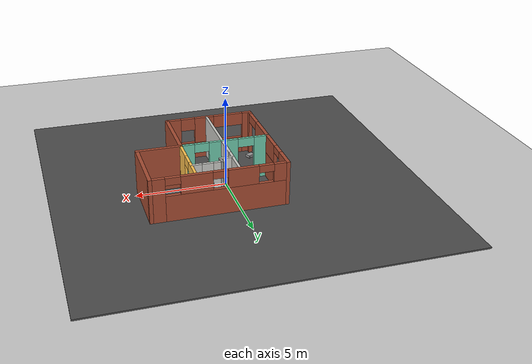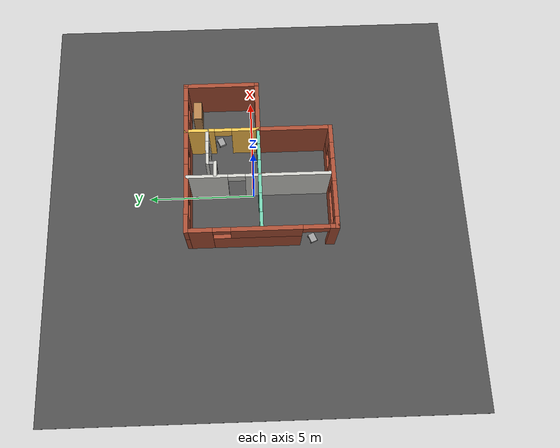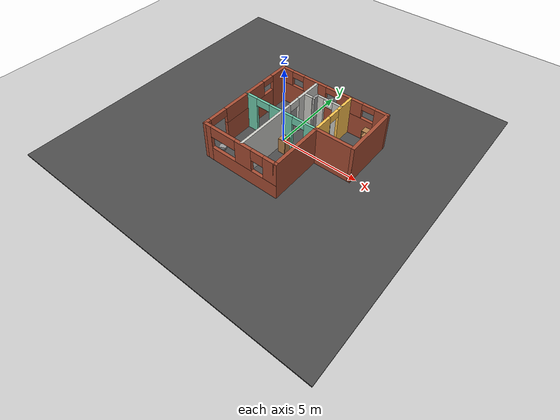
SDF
<sdf version="1.7">
 <world name="default">
  <plugin name="hello" filename="libhello.so"/>
  <light name="sun" type="directional">
   <pose>0 0 10 0 -0 0</pose>
   <diffuse>0.8 0.8 0.8 1</diffuse>
   <specular>0.2 0.2 0.2 1</specular>
   <attenuation>
    <range>1000</range>
    <constant>0.9</constant>
    <linear>0.01</linear>
    <quadratic>0.001</quadratic>
   </attenuation>
   <direction>-0.5 0.1 -0.9</direction>
   <spot><inner_angle>0</inner_angle><outer_angle>0</outer_angle><falloff>0</falloff></spot>
  </light>
  <model name="ground_plane">
   <static>1</static>
   <link name="link">
    <collision name="collision">
     <geometry><plane><normal>0 0 1</normal><size>100 100</size></plane></geometry>
     <surface><friction><ode><mu>100</mu><mu2>50</mu2></ode></friction></surface>
    </collision>
    <visual name="visual">
     <cast_shadows>0</cast_shadows>
     <geometry><plane><normal>0 0 1</normal><size>100 100</size></plane></geometry>
     <material>
      <script><uri>file://media/materials/scripts/gazebo.material</uri><name>Gazebo/Grey</name></script>
     </material>
    </visual>
   </link>
  </model>
  <gravity>0 0 -9.8</gravity>
  <magnetic_field>6e-06 2.3e-05 -4.2e-05</magnetic_field>
  <atmosphere type="adiabatic"/>
  <physics type="ode">
   <max_step_size>0.001</max_step_size>
   <real_time_factor>1</real_time_factor>
   <real_time_update_rate>1000</real_time_update_rate>
  </physics>
  <scene><ambient>0.4 0.4 0.4 1</ambient><background>0.7 0.7 0.7 1</background><shadows>1</shadows></scene>
  <spherical_coordinates>
   <surface_model>EARTH_WGS84</surface_model>
   <latitude_deg>0</latitude_deg>
   <longitude_deg>0</longitude_deg>
   <elevation>0</elevation>
   <heading_deg>0</heading_deg>
  </spherical_coordinates>
  <model name="Building">
   <pose>2.54634 -0.291397 0 0 -0 0</pose>
   <link name="Wall_14">
    <pose>-4.9865 -0 0 0 -0 -1.5708</pose>
    <visual name="Wall_14_Visual_0">
     <pose>-2.81496 0 1.25 0 -0 0</pose>
     <geometry><box><size>1.27056 0.2 2.5</size></box></geometry>
     <material>
      <script><uri>file://media/materials/scripts/gazebo.material</uri><name>Gazebo/Bricks</name></script>
      <ambient>1 1 1 1</ambient>
     </material>
     <meta><layer>0</layer></meta>
    </visual>
    <collision name="Wall_14_Collision_0">
     <geometry><box><size>1.27056 0.2 2.5</size></box></geometry>
     <pose>-2.81496 0 1.25 0 -0 0</pose>
    </collision>
    <visual name="Wall_14_Visual_1">
     <pose>3.23578 0 1.25 0 -0 0</pose>
     <geometry><box><size>0.428921 0.2 2.5</size></box></geometry>
     <material>
      <script><uri>file://media/materials/scripts/gazebo.material</uri><name>Gazebo/Bricks</name></script>
      <ambient>1 1 1 1</ambient>
     </material>
     <meta><layer>0</layer></meta>
    </visual>
    <collision name="Wall_14_Collision_1">
     <geometry><box><size>0.428921 0.2 2.5</size></box></geometry>
     <pose>3.23578 0 1.25 0 -0 0</pose>
    </collision>
    <visual name="Wall_14_Visual_2">
     <pose>-0.179181 0 0.75 0 -0 0</pose>
     <geometry><box><size>4.00101 0.2 1.5</size></box></geometry>
     <material>
      <script><uri>file://media/materials/scripts/gazebo.material</uri><name>Gazebo/Bricks</name></script>
      <ambient>1 1 1 1</ambient>
     </material>
     <meta><layer>0</layer></meta>
    </visual>
    <collision name="Wall_14_Collision_2">
     <geometry><box><size>4.00101 0.2 1.5</size></box></geometry>
     <pose>-0.179181 0 0.75 0 -0 0</pose>
    </collision>
    <visual name="Wall_14_Visual_3">
     <pose>0.220819 0 2 0 -0 0</pose>
     <geometry><box><size>3.201 0.2 1</size></box></geometry>
     <material>
      <script><uri>file://media/materials/scripts/gazebo.material</uri><name>Gazebo/Bricks</name></script>
      <ambient>1 1 1 1</ambient>
     </material>
     <meta><layer>0</layer></meta>
    </visual>
    <collision name="Wall_14_Collision_3">
     <geometry><box><size>3.201 0.2 1</size></box></geometry>
     <pose>0.220819 0 2 0 -0 0</pose>
    </collision>
    <visual name="Wall_14_Visual_4">
     <pose>2.42132 0 2.25 0 -0 0</pose>
     <geometry><box><size>1.2 0.2 0.5</size></box></geometry>
     <material>
      <script><uri>file://media/materials/scripts/gazebo.material</uri><name>Gazebo/Bricks</name></script>
      <ambient>1 1 1 1</ambient>
     </material>
     <meta><layer>0</layer></meta>
    </visual>
    <collision name="Wall_14_Collision_4">
     <geometry><box><size>1.2 0.2 0.5</size></box></geometry>
     <pose>2.42132 0 2.25 0 -0 0</pose>
    </collision>
    <visual name="Wall_14_Visual_5">
     <pose>-1.77968 0 2.3 0 -0 0</pose>
     <geometry><box><size>0.8 0.2 0.4</size></box></geometry>
     <material>
      <script><uri>file://media/materials/scripts/gazebo.material</uri><name>Gazebo/Bricks</name></script>
      <ambient>1 1 1 1</ambient>
     </material>
     <meta><layer>0</layer></meta>
    </visual>
    <collision name="Wall_14_Collision_5">
     <geometry><box><size>0.8 0.2 0.4</size></box></geometry>
     <pose>-1.77968 0 2.3 0 -0 0</pose>
    </collision>
   </link>
   <link name="Wall_15">
    <pose>-2.5615 -3.35 0 0 -0 0</pose>
    <visual name="Wall_15_Visual_0">
     <pose>-2.24849 0 1.25 0 -0 0</pose>
     <geometry><box><size>0.553027 0.2 2.5</size></box></geometry>
     <material>
      <script><uri>file://media/materials/scripts/gazebo.material</uri><name>Gazebo/Bricks</name></script>
      <ambient>1 1 1 1</ambient>
     </material>
     <meta><layer>0</layer></meta>
    </visual>
    <collision name="Wall_15_Collision_0">
     <geometry><box><size>0.553027 0.2 2.5</size></box></geometry>
     <pose>-2.24849 0 1.25 0 -0 0</pose>
    </collision>
    <visual name="Wall_15_Visual_1">
     <pose>0.276513 0 0.5 0 -0 0</pose>
     <geometry><box><size>4.49697 0.2 1</size></box></geometry>
     <material>
      <script><uri>file://media/materials/scripts/gazebo.material</uri><name>Gazebo/Bricks</name></script>
      <ambient>1 1 1 1</ambient>
     </material>
     <meta><layer>0</layer></meta>
    </visual>
    <collision name="Wall_15_Collision_1">
     <geometry><box><size>4.49697 0.2 1</size></box></geometry>
     <pose>0.276513 0 0.5 0 -0 0</pose>
    </collision>
    <visual name="Wall_15_Visual_2">
     <pose>0.283027 0 1.75 0 -0 0</pose>
     <geometry><box><size>1.11 0.2 1.5</size></box></geometry>
     <material>
      <script><uri>file://media/materials/scripts/gazebo.material</uri><name>Gazebo/Bricks</name></script>
      <ambient>1 1 1 1</ambient>
     </material>
     <meta><layer>0</layer></meta>
    </visual>
    <collision name="Wall_15_Collision_2">
     <geometry><box><size>1.11 0.2 1.5</size></box></geometry>
     <pose>0.283027 0 1.75 0 -0 0</pose>
    </collision>
    <visual name="Wall_15_Visual_3">
     <pose>2.08151 0 1.75 0 -0 0</pose>
     <geometry><box><size>0.886973 0.2 1.5</size></box></geometry>
     <material>
      <script><uri>file://media/materials/scripts/gazebo.material</uri><name>Gazebo/Bricks</name></script>
      <ambient>1 1 1 1</ambient>
     </material>
     <meta><layer>0</layer></meta>
    </visual>
    <collision name="Wall_15_Collision_3">
     <geometry><box><size>0.886973 0.2 1.5</size></box></geometry>
     <pose>2.08151 0 1.75 0 -0 0</pose>
    </collision>
    <visual name="Wall_15_Visual_4">
     <pose>-1.12197 0 2.15 0 -0 0</pose>
     <geometry><box><size>1.7 0.2 0.7</size></box></geometry>
     <material>
      <script><uri>file://media/materials/scripts/gazebo.material</uri><name>Gazebo/Bricks</name></script>
      <ambient>1 1 1 1</ambient>
     </material>
     <meta><layer>0</layer></meta>
    </visual>
    <collision name="Wall_15_Collision_4">
     <geometry><box><size>1.7 0.2 0.7</size></box></geometry>
     <pose>-1.12197 0 2.15 0 -0 0</pose>
    </collision>
    <visual name="Wall_15_Visual_5">
     <pose>1.23803 0 2.15 0 -0 0</pose>
     <geometry><box><size>0.8 0.2 0.7</size></box></geometry>
     <material>
      <script><uri>file://media/materials/scripts/gazebo.material</uri><name>Gazebo/Bricks</name></script>
      <ambient>1 1 1 1</ambient>
     </material>
     <meta><layer>0</layer></meta>
    </visual>
    <collision name="Wall_15_Collision_5">
     <geometry><box><size>0.8 0.2 0.7</size></box></geometry>
     <pose>1.23803 0 2.15 0 -0 0</pose>
    </collision>
   </link>
   <link name="Wall_16">
    <collision name="Wall_16_Collision">
     <geometry><box><size>3.55 0.2 2.5</size></box></geometry>
     <pose>0 0 1.25 0 -0 0</pose>
    </collision>
    <visual name="Wall_16_Visual">
     <pose>0 0 1.25 0 -0 0</pose>
     <geometry><box><size>3.55 0.2 2.5</size></box></geometry>
     <material>
      <script><uri>file://media/materials/scripts/gazebo.material</uri><name>Gazebo/Bricks</name></script>
      <ambient>1 1 1 1</ambient>
     </material>
     <meta><layer>0</layer></meta>
    </visual>
    <pose>-0.1365 -1.675 0 0 -0 1.5708</pose>
   </link>
   <link name="Wall_17">
    <collision name="Wall_17_Collision">
     <geometry><box><size>2.55 0.2 2.5</size></box></geometry>
     <pose>0 0 1.25 0 -0 0</pose>
    </collision>
    <visual name="Wall_17_Visual">
     <pose>0 0 1.25 0 -0 0</pose>
     <geometry><box><size>2.55 0.2 2.5</size></box></geometry>
     <material>
      <script><uri>file://media/materials/scripts/gazebo.material</uri><name>Gazebo/Bricks</name></script>
      <ambient>1 1 1 1</ambient>
     </material>
     <meta><layer>0</layer></meta>
    </visual>
    <pose>1.0385 -0 0 0 -0 0</pose>
   </link>
   <link name="Wall_18">
    <collision name="Wall_18_Collision">
     <geometry><box><size>3.55 0.2 2.5</size></box></geometry>
     <pose>0 0 1.25 0 -0 0</pose>
    </collision>
    <visual name="Wall_18_Visual">
     <pose>0 0 1.25 0 -0 0</pose>
     <geometry><box><size>3.55 0.2 2.5</size></box></geometry>
     <material>
      <script><uri>file://media/materials/scripts/gazebo.material</uri><name>Gazebo/Bricks</name></script>
      <ambient>1 1 1 1</ambient>
     </material>
     <meta><layer>0</layer></meta>
    </visual>
    <pose>2.2135 1.675 0 0 -0 1.5708</pose>
   </link>
   <link name="Wall_19">
    <pose>-1.3865 3.35 0 0 -0 3.14159</pose>
    <visual name="Wall_19_Visual_0">
     <pose>-3.27151 0 1.25 0 -0 0</pose>
     <geometry><box><size>0.856973 0.2 2.5</size></box></geometry>
     <material>
      <script><uri>file://media/materials/scripts/gazebo.material</uri><name>Gazebo/Bricks</name></script>
      <ambient>1 1 1 1</ambient>
     </material>
     <meta><layer>0</layer></meta>
    </visual>
    <collision name="Wall_19_Collision_0">
     <geometry><box><size>0.856973 0.2 2.5</size></box></geometry>
     <pose>-3.27151 0 1.25 0 -0 0</pose>
    </collision>
    <visual name="Wall_19_Visual_1">
     <pose>0.428486 0 0.75 0 -0 0</pose>
     <geometry><box><size>6.54303 0.2 1.5</size></box></geometry>
     <material>
      <script><uri>file://media/materials/scripts/gazebo.material</uri><name>Gazebo/Bricks</name></script>
      <ambient>1 1 1 1</ambient>
     </material>
     <meta><layer>0</layer></meta>
    </visual>
    <collision name="Wall_19_Collision_1">
     <geometry><box><size>6.54303 0.2 1.5</size></box></geometry>
     <pose>0.428486 0 0.75 0 -0 0</pose>
    </collision>
    <visual name="Wall_19_Visual_2">
     <pose>-1.21303 0 2 0 -0 0</pose>
     <geometry><box><size>1.66 0.2 1</size></box></geometry>
     <material>
      <script><uri>file://media/materials/scripts/gazebo.material</uri><name>Gazebo/Bricks</name></script>
      <ambient>1 1 1 1</ambient>
     </material>
     <meta><layer>0</layer></meta>
    </visual>
    <collision name="Wall_19_Collision_2">
     <geometry><box><size>1.66 0.2 1</size></box></geometry>
     <pose>-1.21303 0 2 0 -0 0</pose>
    </collision>
    <visual name="Wall_19_Visual_3">
     <pose>1.22697 0 2 0 -0 0</pose>
     <geometry><box><size>1.62 0.2 1</size></box></geometry>
     <material>
      <script><uri>file://media/materials/scripts/gazebo.material</uri><name>Gazebo/Bricks</name></script>
      <ambient>1 1 1 1</ambient>
     </material>
     <meta><layer>0</layer></meta>
    </visual>
    <collision name="Wall_19_Collision_3">
     <geometry><box><size>1.62 0.2 1</size></box></geometry>
     <pose>1.22697 0 2 0 -0 0</pose>
    </collision>
    <visual name="Wall_19_Visual_4">
     <pose>3.26849 0 2 0 -0 0</pose>
     <geometry><box><size>0.863027 0.2 1</size></box></geometry>
     <material>
      <script><uri>file://media/materials/scripts/gazebo.material</uri><name>Gazebo/Bricks</name></script>
      <ambient>1 1 1 1</ambient>
     </material>
     <meta><layer>0</layer></meta>
    </visual>
    <collision name="Wall_19_Collision_4">
     <geometry><box><size>0.863027 0.2 1</size></box></geometry>
     <pose>3.26849 0 2 0 -0 0</pose>
    </collision>
    <visual name="Wall_19_Visual_5">
     <pose>-2.44303 0 2.3 0 -0 0</pose>
     <geometry><box><size>0.8 0.2 0.4</size></box></geometry>
     <material>
      <script><uri>file://media/materials/scripts/gazebo.material</uri><name>Gazebo/Bricks</name></script>
      <ambient>1 1 1 1</ambient>
     </material>
     <meta><layer>0</layer></meta>
    </visual>
    <collision name="Wall_19_Collision_5">
     <geometry><box><size>0.8 0.2 0.4</size></box></geometry>
     <pose>-2.44303 0 2.3 0 -0 0</pose>
    </collision>
    <visual name="Wall_19_Visual_6">
     <pose>0.016973 0 2.3 0 -0 0</pose>
     <geometry><box><size>0.8 0.2 0.4</size></box></geometry>
     <material>
      <script><uri>file://media/materials/scripts/gazebo.material</uri><name>Gazebo/Bricks</name></script>
      <ambient>1 1 1 1</ambient>
     </material>
     <meta><layer>0</layer></meta>
    </visual>
    <collision name="Wall_19_Collision_6">
     <geometry><box><size>0.8 0.2 0.4</size></box></geometry>
     <pose>0.016973 0 2.3 0 -0 0</pose>
    </collision>
    <visual name="Wall_19_Visual_7">
     <pose>2.43697 0 2.3 0 -0 0</pose>
     <geometry><box><size>0.8 0.2 0.4</size></box></geometry>
     <material>
      <script><uri>file://media/materials/scripts/gazebo.material</uri><name>Gazebo/Bricks</name></script>
      <ambient>1 1 1 1</ambient>
     </material>
     <meta><layer>0</layer></meta>
    </visual>
    <collision name="Wall_19_Collision_7">
     <geometry><box><size>0.8 0.2 0.4</size></box></geometry>
     <pose>2.43697 0 2.3 0 -0 0</pose>
    </collision>
   </link>
   <link name="Wall_21">
    <pose>-2.5615 -0 0 0 -0 3.14159</pose>
    <visual name="Wall_21_Visual_0">
     <pose>-2.0857 0 1.25 0 -0 0</pose>
     <geometry><box><size>0.8286 0.15 2.5</size></box></geometry>
     <material>
      <script><uri>file://media/materials/scripts/gazebo.material</uri><name>Gazebo/Grey</name></script>
      <ambient>0.435294 0.796078 0.67451 1</ambient>
     </material>
     <meta><layer>0</layer></meta>
    </visual>
    <collision name="Wall_21_Collision_0">
     <geometry><box><size>0.8286 0.15 2.5</size></box></geometry>
     <pose>-2.0857 0 1.25 0 -0 0</pose>
    </collision>
    <visual name="Wall_21_Visual_1">
     <pose>-0.058737 0 1.25 0 -0 0</pose>
     <geometry><box><size>1.62533 0.15 2.5</size></box></geometry>
     <material>
      <script><uri>file://media/materials/scripts/gazebo.material</uri><name>Gazebo/Grey</name></script>
      <ambient>0.435294 0.796078 0.67451 1</ambient>
     </material>
     <meta><layer>0</layer></meta>
    </visual>
    <collision name="Wall_21_Collision_1">
     <geometry><box><size>1.62533 0.15 2.5</size></box></geometry>
     <pose>-0.058737 0 1.25 0 -0 0</pose>
    </collision>
    <visual name="Wall_21_Visual_2">
     <pose>2.07696 0 1.25 0 -0 0</pose>
     <geometry><box><size>0.846073 0.15 2.5</size></box></geometry>
     <material>
      <script><uri>file://media/materials/scripts/gazebo.material</uri><name>Gazebo/Grey</name></script>
      <ambient>0.435294 0.796078 0.67451 1</ambient>
     </material>
     <meta><layer>0</layer></meta>
    </visual>
    <collision name="Wall_21_Collision_2">
     <geometry><box><size>0.846073 0.15 2.5</size></box></geometry>
     <pose>2.07696 0 1.25 0 -0 0</pose>
    </collision>
    <visual name="Wall_21_Visual_3">
     <pose>-1.2714 0 2.25 0 -0 0</pose>
     <geometry><box><size>0.8 0.15 0.5</size></box></geometry>
     <material>
      <script><uri>file://media/materials/scripts/gazebo.material</uri><name>Gazebo/Grey</name></script>
      <ambient>0.435294 0.796078 0.67451 1</ambient>
     </material>
     <meta><layer>0</layer></meta>
    </visual>
    <collision name="Wall_21_Collision_3">
     <geometry><box><size>0.8 0.15 0.5</size></box></geometry>
     <pose>-1.2714 0 2.25 0 -0 0</pose>
    </collision>
    <visual name="Wall_21_Visual_4">
     <pose>1.20393 0 2.25 0 -0 0</pose>
     <geometry><box><size>0.9 0.15 0.5</size></box></geometry>
     <material>
      <script><uri>file://media/materials/scripts/gazebo.material</uri><name>Gazebo/Grey</name></script>
      <ambient>0.435294 0.796078 0.67451 1</ambient>
     </material>
     <meta><layer>0</layer></meta>
    </visual>
    <collision name="Wall_21_Collision_4">
     <geometry><box><size>0.9 0.15 0.5</size></box></geometry>
     <pose>1.20393 0 2.25 0 -0 0</pose>
    </collision>
   </link>
   <link name="Wall_23">
    <pose>-2.43461 0.010248 0 0 -0 -1.5708</pose>
    <visual name="Wall_23_Visual_0">
     <pose>-2.41085 0 1.25 0 -0 0</pose>
     <geometry><box><size>1.92831 0.15 2.5</size></box></geometry>
     <material>
      <script><uri>file://media/materials/scripts/gazebo.material</uri><name>Gazebo/CeilingTiled</name></script>
      <ambient>0.435294 0.796078 0.67451 1</ambient>
     </material>
     <meta><layer>0</layer></meta>
    </visual>
    <collision name="Wall_23_Collision_0">
     <geometry><box><size>1.92831 0.15 2.5</size></box></geometry>
     <pose>-2.41085 0 1.25 0 -0 0</pose>
    </collision>
    <visual name="Wall_23_Visual_1">
     <pose>1.36415 0 1.25 0 -0 0</pose>
     <geometry><box><size>4.02169 0.15 2.5</size></box></geometry>
     <material>
      <script><uri>file://media/materials/scripts/gazebo.material</uri><name>Gazebo/CeilingTiled</name></script>
      <ambient>0.435294 0.796078 0.67451 1</ambient>
     </material>
     <meta><layer>0</layer></meta>
    </visual>
    <collision name="Wall_23_Collision_1">
     <geometry><box><size>4.02169 0.15 2.5</size></box></geometry>
     <pose>1.36415 0 1.25 0 -0 0</pose>
    </collision>
    <visual name="Wall_23_Visual_2">
     <pose>-1.04669 0 2.25 0 -0 0</pose>
     <geometry><box><size>0.8 0.15 0.5</size></box></geometry>
     <material>
      <script><uri>file://media/materials/scripts/gazebo.material</uri><name>Gazebo/CeilingTiled</name></script>
      <ambient>0.435294 0.796078 0.67451 1</ambient>
     </material>
     <meta><layer>0</layer></meta>
    </visual>
    <collision name="Wall_23_Collision_2">
     <geometry><box><size>0.8 0.15 0.5</size></box></geometry>
     <pose>-1.04669 0 2.25 0 -0 0</pose>
    </collision>
   </link>
   <link name="Wall_25">
    <pose>-0.1365 1.675 0 0 -0 1.5708</pose>
    <visual name="Wall_25_Visual_0">
     <pose>-1.09827 0 1.25 0 -0 0</pose>
     <geometry><box><size>1.30347 0.15 2.5</size></box></geometry>
     <material>
      <script><uri>file://media/materials/scripts/gazebo.material</uri><name>Gazebo/Grey</name></script>
      <ambient>1 0.764706 0.305882 1</ambient>
     </material>
     <meta><layer>0</layer></meta>
    </visual>
    <collision name="Wall_25_Collision_0">
     <geometry><box><size>1.30347 0.15 2.5</size></box></geometry>
     <pose>-1.09827 0 1.25 0 -0 0</pose>
    </collision>
    <visual name="Wall_25_Visual_1">
     <pose>1.05173 0 1.25 0 -0 0</pose>
     <geometry><box><size>1.39654 0.15 2.5</size></box></geometry>
     <material>
      <script><uri>file://media/materials/scripts/gazebo.material</uri><name>Gazebo/Grey</name></script>
      <ambient>1 0.764706 0.305882 1</ambient>
     </material>
     <meta><layer>0</layer></meta>
    </visual>
    <collision name="Wall_25_Collision_1">
     <geometry><box><size>1.39654 0.15 2.5</size></box></geometry>
     <pose>1.05173 0 1.25 0 -0 0</pose>
    </collision>
    <visual name="Wall_25_Visual_2">
     <pose>-0.046535 0 2.25 0 -0 0</pose>
     <geometry><box><size>0.8 0.15 0.5</size></box></geometry>
     <material>
      <script><uri>file://media/materials/scripts/gazebo.material</uri><name>Gazebo/Grey</name></script>
      <ambient>1 0.764706 0.305882 1</ambient>
     </material>
     <meta><layer>0</layer></meta>
    </visual>
    <collision name="Wall_25_Collision_2">
     <geometry><box><size>0.8 0.15 0.5</size></box></geometry>
     <pose>-0.046535 0 2.25 0 -0 0</pose>
    </collision>
   </link>
   <link name="Wall_30">
    <collision name="Wall_30_Collision">
     <geometry><box><size>0.76067 0.15 2.5</size></box></geometry>
     <pose>0 0 1.25 0 -0 0</pose>
    </collision>
    <visual name="Wall_30_Visual">
     <pose>0 0 1.25 0 -0 0</pose>
     <geometry><box><size>0.76067 0.15 2.5</size></box></geometry>
     <material>
      <script><uri>file://media/materials/scripts/gazebo.material</uri><name>Gazebo/CeilingTiled</name></script>
      <ambient>1 1 1 1</ambient>
     </material>
     <meta><layer>0</layer></meta>
    </visual>
    <pose>-2.06879 2.0248 0 0 -0 0</pose>
   </link>
   <link name="Wall_31">
    <collision name="Wall_31_Collision">
     <geometry><box><size>0.5 0.15 2.5</size></box></geometry>
     <pose>0 0 1.25 0 -0 0</pose>
    </collision>
    <visual name="Wall_31_Visual">
     <pose>0 0 1.25 0 -0 0</pose>
     <geometry><box><size>0.5 0.15 2.5</size></box></geometry>
     <material>
      <script><uri>file://media/materials/scripts/gazebo.material</uri><name>Gazebo/Grey</name></script>
      <ambient>1 1 1 1</ambient>
     </material>
     <meta><layer>0</layer></meta>
    </visual>
    <pose>-1.76345 2.1998 0 0 -0 1.5708</pose>
   </link>
   <link name="Wall_32">
    <pose>-0.968788 2.3748 0 0 -0 0</pose>
    <visual name="Wall_32_Visual_0">
     <pose>-0.596832 0 1.25 0 -0 0</pose>
     <geometry><box><size>0.545665 0.15 2.5</size></box></geometry>
     <material>
      <script><uri>file://media/materials/scripts/gazebo.material</uri><name>Gazebo/CeilingTiled</name></script>
      <ambient>1 1 1 1</ambient>
     </material>
     <meta><layer>0</layer></meta>
    </visual>
    <collision name="Wall_32_Collision_0">
     <geometry><box><size>0.545665 0.15 2.5</size></box></geometry>
     <pose>-0.596832 0 1.25 0 -0 0</pose>
    </collision>
    <visual name="Wall_32_Visual_1">
     <pose>0.572833 0 1.25 0 -0 0</pose>
     <geometry><box><size>0.593665 0.15 2.5</size></box></geometry>
     <material>
      <script><uri>file://media/materials/scripts/gazebo.material</uri><name>Gazebo/CeilingTiled</name></script>
      <ambient>1 1 1 1</ambient>
     </material>
     <meta><layer>0</layer></meta>
    </visual>
    <collision name="Wall_32_Collision_1">
     <geometry><box><size>0.593665 0.15 2.5</size></box></geometry>
     <pose>0.572833 0 1.25 0 -0 0</pose>
    </collision>
    <visual name="Wall_32_Visual_2">
     <pose>-0.024 0 2.25 0 -0 0</pose>
     <geometry><box><size>0.6 0.15 0.5</size></box></geometry>
     <material>
      <script><uri>file://media/materials/scripts/gazebo.material</uri><name>Gazebo/CeilingTiled</name></script>
      <ambient>1 1 1 1</ambient>
     </material>
     <meta><layer>0</layer></meta>
    </visual>
    <collision name="Wall_32_Collision_2">
     <geometry><box><size>0.6 0.15 0.5</size></box></geometry>
     <pose>-0.024 0 2.25 0 -0 0</pose>
    </collision>
   </link>
   <static>1</static>
  </model>
  <model name="Robot">
   <link name="link_1">
    <inertial>
     <mass>1</mass>
     <inertia>
      <ixx>0.166667</ixx>
      <ixy>0</ixy>
      <ixz>0</ixz>
      <iyy>0.166667</iyy>
      <iyz>0</iyz>
      <izz>0.166667</izz>
     </inertia>
    </inertial>
    <pose>0 2e-06 0.04 0 -0 0</pose>
    <visual name="visual">
     <geometry><box><size>0.4 0.3 0.15</size></box></geometry>
     <material>
      <lighting>1</lighting>
      <script><uri>file://media/materials/scripts/gazebo.material</uri><name>Gazebo/Grey</name></script>
      <shader type="pixel"><normal_map>__default__</normal_map></shader>
      <ambient>0.3 0.3 0.3 1</ambient>
      <diffuse>0.7 0.7 0.7 1</diffuse>
      <specular>0.01 0.01 0.01 1</specular>
      <emissive>0 0 0 1</emissive>
     </material>
    </visual>
    <collision name="collision">
     <geometry><box><size>0.4 0.3 0.15</size></box></geometry>
     <surface>
      <friction>
       <ode><mu>1</mu><mu2>1</mu2><fdir1>0 0 0</fdir1><slip1>0</slip1><slip2>0</slip2></ode>
       <torsional>
        <coefficient>1</coefficient>
        <patch_radius>0</patch_radius>
        <surface_radius>0</surface_radius>
        <use_patch_radius>1</use_patch_radius>
        <ode><slip>0</slip></ode>
       </torsional>
      </friction>
      <bounce><restitution_coefficient>0</restitution_coefficient><threshold>1e+06</threshold></bounce>
      <contact>
       <collide_without_contact>0</collide_without_contact>
       <collide_without_contact_bitmask>1</collide_without_contact_bitmask>
       <collide_bitmask>1</collide_bitmask>
       <ode>
        <soft_cfm>0</soft_cfm>
        <soft_erp>0.2</soft_erp>
        <kp>1e+13</kp>
        <kd>1</kd>
        <max_vel>0.01</max_vel>
        <min_depth>0</min_depth>
       </ode>
       <bullet>
        <split_impulse>1</split_impulse>
        <split_impulse_penetration_threshold>-0.01</split_impulse_penetration_threshold>
        <soft_cfm>0</soft_cfm>
        <soft_erp>0.2</soft_erp>
        <kp>1e+13</kp>
        <kd>1</kd>
       </bullet>
      </contact>
     </surface>
    </collision>
   </link>
   <link name="link_3">
    <inertial>
     <mass>1</mass>
     <inertia><ixx>0.145833</ixx><ixy>0</ixy><ixz>0</ixz><iyy>0.145833</iyy><iyz>0</iyz><izz>0.125</izz></inertia>
    </inertial>
    <pose>-0.15 -0.162512 -0.01 1.5707 -0 0</pose>
    <visual name="visual">
     <geometry><cylinder><radius>0.05</radius><length>0.025</length></cylinder></geometry>
     <material>
      <lighting>1</lighting>
      <script><uri>file://media/materials/scripts/gazebo.material</uri><name>Gazebo/Grey</name></script>
      <shader type="pixel"><normal_map>__default__</normal_map></shader>
      <ambient>0.3 0.3 0.3 1</ambient>
      <diffuse>0.7 0.7 0.7 1</diffuse>
      <specular>0.01 0.01 0.01 1</specular>
      <emissive>0 0 0 1</emissive>
     </material>
    </visual>
    <collision name="collision">
     <geometry><cylinder><radius>0.05</radius><length>0.025</length></cylinder></geometry>
     <surface>
      <friction>
       <ode><mu>1</mu><mu2>1</mu2><fdir1>0 0 0</fdir1><slip1>0</slip1><slip2>0</slip2></ode>
       <torsional>
        <coefficient>1</coefficient>
        <patch_radius>0</patch_radius>
        <surface_radius>0</surface_radius>
        <use_patch_radius>1</use_patch_radius>
        <ode><slip>0</slip></ode>
       </torsional>
      </friction>
      <bounce><restitution_coefficient>0</restitution_coefficient><threshold>1e+06</threshold></bounce>
      <contact>
       <collide_without_contact>0</collide_without_contact>
       <collide_without_contact_bitmask>1</collide_without_contact_bitmask>
       <collide_bitmask>1</collide_bitmask>
       <ode>
        <soft_cfm>0</soft_cfm>
        <soft_erp>0.2</soft_erp>
        <kp>1e+13</kp>
        <kd>1</kd>
        <max_vel>0.01</max_vel>
        <min_depth>0</min_depth>
       </ode>
       <bullet>
        <split_impulse>1</split_impulse>
        <split_impulse_penetration_threshold>-0.01</split_impulse_penetration_threshold>
        <soft_cfm>0</soft_cfm>
        <soft_erp>0.2</soft_erp>
        <kp>1e+13</kp>
        <kd>1</kd>
       </bullet>
      </contact>
     </surface>
    </collision>
   </link>
   <link name="link_3_clone">
    <inertial>
     <mass>1</mass>
     <inertia><ixx>0.145833</ixx><ixy>0</ixy><ixz>0</ixz><iyy>0.145833</iyy><iyz>0</iyz><izz>0.125</izz></inertia>
    </inertial>
    <pose>0.15 -0.162503 -0.01 1.5707 -0 0</pose>
    <visual name="visual">
     <geometry><cylinder><radius>0.05</radius><length>0.025</length></cylinder></geometry>
     <material>
      <lighting>1</lighting>
      <script><uri>file://media/materials/scripts/gazebo.material</uri><name>Gazebo/Grey</name></script>
      <shader type="pixel"><normal_map>__default__</normal_map></shader>
      <ambient>0.3 0.3 0.3 1</ambient>
      <diffuse>0.7 0.7 0.7 1</diffuse>
      <specular>0.01 0.01 0.01 1</specular>
      <emissive>0 0 0 1</emissive>
     </material>
    </visual>
    <collision name="collision">
     <geometry><cylinder><radius>0.05</radius><length>0.025</length></cylinder></geometry>
     <surface>
      <friction>
       <ode><mu>1</mu><mu2>1</mu2><fdir1>0 0 0</fdir1><slip1>0</slip1><slip2>0</slip2></ode>
       <torsional>
        <coefficient>1</coefficient>
        <patch_radius>0</patch_radius>
        <surface_radius>0</surface_radius>
        <use_patch_radius>1</use_patch_radius>
        <ode><slip>0</slip></ode>
       </torsional>
      </friction>
      <bounce><restitution_coefficient>0</restitution_coefficient><threshold>1e+06</threshold></bounce>
      <contact>
       <collide_without_contact>0</collide_without_contact>
       <collide_without_contact_bitmask>1</collide_without_contact_bitmask>
       <collide_bitmask>1</collide_bitmask>
       <ode>
        <soft_cfm>0</soft_cfm>
        <soft_erp>0.2</soft_erp>
        <kp>1e+13</kp>
        <kd>1</kd>
        <max_vel>0.01</max_vel>
        <min_depth>0</min_depth>
       </ode>
       <bullet>
        <split_impulse>1</split_impulse>
        <split_impulse_penetration_threshold>-0.01</split_impulse_penetration_threshold>
        <soft_cfm>0</soft_cfm>
        <soft_erp>0.2</soft_erp>
        <kp>1e+13</kp>
        <kd>1</kd>
       </bullet>
      </contact>
     </surface>
    </collision>
   </link>
   <link name="link_3_clone_0">
    <inertial>
     <mass>1</mass>
     <inertia><ixx>0.145833</ixx><ixy>0</ixy><ixz>0</ixz><iyy>0.145833</iyy><iyz>0</iyz><izz>0.125</izz></inertia>
    </inertial>
    <pose>0.15 0.162506 -0.01 1.5707 -0 0</pose>
    <visual name="visual">
     <geometry><cylinder><radius>0.05</radius><length>0.025</length></cylinder></geometry>
     <material>
      <lighting>1</lighting>
      <script><uri>file://media/materials/scripts/gazebo.material</uri><name>Gazebo/Grey</name></script>
      <shader type="pixel"><normal_map>__default__</normal_map></shader>
      <ambient>0.3 0.3 0.3 1</ambient>
      <diffuse>0.7 0.7 0.7 1</diffuse>
      <specular>0.01 0.01 0.01 1</specular>
      <emissive>0 0 0 1</emissive>
     </material>
    </visual>
    <collision name="collision">
     <geometry><cylinder><radius>0.05</radius><length>0.025</length></cylinder></geometry>
     <surface>
      <friction>
       <ode><mu>1</mu><mu2>1</mu2><fdir1>0 0 0</fdir1><slip1>0</slip1><slip2>0</slip2></ode>
       <torsional>
        <coefficient>1</coefficient>
        <patch_radius>0</patch_radius>
        <surface_radius>0</surface_radius>
        <use_patch_radius>1</use_patch_radius>
        <ode><slip>0</slip></ode>
       </torsional>
      </friction>
      <bounce><restitution_coefficient>0</restitution_coefficient><threshold>1e+06</threshold></bounce>
      <contact>
       <collide_without_contact>0</collide_without_contact>
       <collide_without_contact_bitmask>1</collide_without_contact_bitmask>
       <collide_bitmask>1</collide_bitmask>
       <ode>
        <soft_cfm>0</soft_cfm>
        <soft_erp>0.2</soft_erp>
        <kp>1e+13</kp>
        <kd>1</kd>
        <max_vel>0.01</max_vel>
        <min_depth>0</min_depth>
       </ode>
       <bullet>
        <split_impulse>1</split_impulse>
        <split_impulse_penetration_threshold>-0.01</split_impulse_penetration_threshold>
        <soft_cfm>0</soft_cfm>
        <soft_erp>0.2</soft_erp>
        <kp>1e+13</kp>
        <kd>1</kd>
       </bullet>
      </contact>
     </surface>
    </collision>
   </link>
   <link name="link_3_clone_1">
    <inertial>
     <mass>1</mass>
     <inertia><ixx>0.145833</ixx><ixy>0</ixy><ixz>0</ixz><iyy>0.145833</iyy><iyz>0</iyz><izz>0.125</izz></inertia>
    </inertial>
    <pose>-0.15 0.162506 -0.01 1.5707 -0 0</pose>
    <visual name="visual">
     <geometry><cylinder><radius>0.05</radius><length>0.025</length></cylinder></geometry>
     <material>
      <lighting>1</lighting>
      <script><uri>file://media/materials/scripts/gazebo.material</uri><name>Gazebo/Grey</name></script>
      <shader type="pixel"><normal_map>__default__</normal_map></shader>
      <ambient>0.3 0.3 0.3 1</ambient>
      <diffuse>0.7 0.7 0.7 1</diffuse>
      <specular>0.01 0.01 0.01 1</specular>
      <emissive>0 0 0 1</emissive>
     </material>
    </visual>
    <collision name="collision">
     <geometry><cylinder><radius>0.05</radius><length>0.025</length></cylinder></geometry>
     <surface>
      <friction>
       <ode><mu>1</mu><mu2>1</mu2><fdir1>0 0 0</fdir1><slip1>0</slip1><slip2>0</slip2></ode>
       <torsional>
        <coefficient>1</coefficient>
        <patch_radius>0</patch_radius>
        <surface_radius>0</surface_radius>
        <use_patch_radius>1</use_patch_radius>
        <ode><slip>0</slip></ode>
       </torsional>
      </friction>
      <bounce><restitution_coefficient>0</restitution_coefficient><threshold>1e+06</threshold></bounce>
      <contact>
       <collide_without_contact>0</collide_without_contact>
       <collide_without_contact_bitmask>1</collide_without_contact_bitmask>
       <collide_bitmask>1</collide_bitmask>
       <ode>
        <soft_cfm>0</soft_cfm>
        <soft_erp>0.2</soft_erp>
        <kp>1e+13</kp>
        <kd>1</kd>
        <max_vel>0.01</max_vel>
        <min_depth>0</min_depth>
       </ode>
       <bullet>
        <split_impulse>1</split_impulse>
        <split_impulse_penetration_threshold>-0.01</split_impulse_penetration_threshold>
        <soft_cfm>0</soft_cfm>
        <soft_erp>0.2</soft_erp>
        <kp>1e+13</kp>
        <kd>1</kd>
       </bullet>
      </contact>
     </surface>
    </collision>
   </link>
   <joint name="link_1_JOINT_1" type="revolute">
    <parent>link_1</parent>
    <child>link_3</child>
    <axis>
     <xyz>0 0 1</xyz>
     <limit>
      <lower>-1.79769e+308</lower>
      <upper>1.79769e+308</upper>
      <effort>-1</effort>
      <velocity>-1</velocity>
     </limit>
     <dynamics>
      <spring_reference>0</spring_reference>
      <spring_stiffness>0</spring_stiffness>
      <damping>0</damping>
     </dynamics>
    </axis>
    <physics>
     <ode><limit><cfm>0</cfm><erp>0.2</erp></limit><suspension><cfm>0</cfm><erp>0.2</erp></suspension></ode>
    </physics>
   </joint>
   <joint name="link_1_JOINT_2" type="revolute">
    <parent>link_1</parent>
    <child>link_3_clone</child>
    <axis>
     <xyz>0 0 1</xyz>
     <limit>
      <lower>-1.79769e+308</lower>
      <upper>1.79769e+308</upper>
      <effort>-1</effort>
      <velocity>-1</velocity>
     </limit>
     <dynamics>
      <spring_reference>0</spring_reference>
      <spring_stiffness>0</spring_stiffness>
      <damping>0</damping>
     </dynamics>
    </axis>
    <physics>
     <ode><limit><cfm>0</cfm><erp>0.2</erp></limit><suspension><cfm>0</cfm><erp>0.2</erp></suspension></ode>
    </physics>
   </joint>
   <joint name="link_1_JOINT_5" type="revolute">
    <parent>link_1</parent>
    <child>link_3_clone_1</child>
    <axis>
     <xyz>0 0 1</xyz>
     <limit>
      <lower>-1.79769e+308</lower>
      <upper>1.79769e+308</upper>
      <effort>-1</effort>
      <velocity>-1</velocity>
     </limit>
     <dynamics>
      <spring_reference>0</spring_reference>
      <spring_stiffness>0</spring_stiffness>
      <damping>0</damping>
     </dynamics>
    </axis>
    <physics>
     <ode><limit><cfm>0</cfm><erp>0.2</erp></limit><suspension><cfm>0</cfm><erp>0.2</erp></suspension></ode>
    </physics>
   </joint>
   <joint name="link_1_JOINT_6" type="revolute">
    <parent>link_1</parent>
    <child>link_3_clone_0</child>
    <axis>
     <xyz>1 0 0</xyz>
     <limit>
      <lower>-1.79769e+308</lower>
      <upper>1.79769e+308</upper>
      <effort>-1</effort>
      <velocity>-1</velocity>
     </limit>
     <dynamics>
      <spring_reference>0</spring_reference>
      <spring_stiffness>0</spring_stiffness>
      <damping>0</damping>
     </dynamics>
    </axis>
    <physics>
     <ode><limit><cfm>0</cfm><erp>0.2</erp></limit><suspension><cfm>0</cfm><erp>0.2</erp></suspension></ode>
    </physics>
   </joint>
   <static>0</static>
   <pose>-2.23779 -2.7141 0.110001 -3e-06 0 0.392751</pose>
  </model>
  <model name="Robot_0">
   <link name="link_1">
    <inertial>
     <mass>1</mass>
     <inertia>
      <ixx>0.166667</ixx>
      <ixy>0</ixy>
      <ixz>0</ixz>
      <iyy>0.166667</iyy>
      <iyz>0</iyz>
      <izz>0.166667</izz>
     </inertia>
    </inertial>
    <pose>0 2e-06 0.04 0 -0 0</pose>
    <visual name="visual">
     <geometry><box><size>0.4 0.3 0.15</size></box></geometry>
     <material>
      <lighting>1</lighting>
      <script><uri>file://media/materials/scripts/gazebo.material</uri><name>Gazebo/Grey</name></script>
      <shader type="pixel"><normal_map>__default__</normal_map></shader>
      <ambient>0.3 0.3 0.3 1</ambient>
      <diffuse>0.7 0.7 0.7 1</diffuse>
      <specular>0.01 0.01 0.01 1</specular>
      <emissive>0 0 0 1</emissive>
     </material>
    </visual>
    <collision name="collision">
     <geometry><box><size>0.4 0.3 0.15</size></box></geometry>
     <surface>
      <friction>
       <ode><mu>1</mu><mu2>1</mu2><fdir1>0 0 0</fdir1><slip1>0</slip1><slip2>0</slip2></ode>
       <torsional>
        <coefficient>1</coefficient>
        <patch_radius>0</patch_radius>
        <surface_radius>0</surface_radius>
        <use_patch_radius>1</use_patch_radius>
        <ode><slip>0</slip></ode>
       </torsional>
      </friction>
      <bounce><restitution_coefficient>0</restitution_coefficient><threshold>1e+06</threshold></bounce>
      <contact>
       <collide_without_contact>0</collide_without_contact>
       <collide_without_contact_bitmask>1</collide_without_contact_bitmask>
       <collide_bitmask>1</collide_bitmask>
       <ode>
        <soft_cfm>0</soft_cfm>
        <soft_erp>0.2</soft_erp>
        <kp>1e+13</kp>
        <kd>1</kd>
        <max_vel>0.01</max_vel>
        <min_depth>0</min_depth>
       </ode>
       <bullet>
        <split_impulse>1</split_impulse>
        <split_impulse_penetration_threshold>-0.01</split_impulse_penetration_threshold>
        <soft_cfm>0</soft_cfm>
        <soft_erp>0.2</soft_erp>
        <kp>1e+13</kp>
        <kd>1</kd>
       </bullet>
      </contact>
     </surface>
    </collision>
   </link>
   <link name="link_3">
    <inertial>
     <mass>1</mass>
     <inertia><ixx>0.145833</ixx><ixy>0</ixy><ixz>0</ixz><iyy>0.145833</iyy><iyz>0</iyz><izz>0.125</izz></inertia>
    </inertial>
    <pose>-0.15 -0.162512 -0.01 1.5707 -0 0</pose>
    <visual name="visual">
     <geometry><cylinder><radius>0.05</radius><length>0.025</length></cylinder></geometry>
     <material>
      <lighting>1</lighting>
      <script><uri>file://media/materials/scripts/gazebo.material</uri><name>Gazebo/Grey</name></script>
      <shader type="pixel"><normal_map>__default__</normal_map></shader>
      <ambient>0.3 0.3 0.3 1</ambient>
      <diffuse>0.7 0.7 0.7 1</diffuse>
      <specular>0.01 0.01 0.01 1</specular>
      <emissive>0 0 0 1</emissive>
     </material>
    </visual>
    <collision name="collision">
     <geometry><cylinder><radius>0.05</radius><length>0.025</length></cylinder></geometry>
     <surface>
      <friction>
       <ode><mu>1</mu><mu2>1</mu2><fdir1>0 0 0</fdir1><slip1>0</slip1><slip2>0</slip2></ode>
       <torsional>
        <coefficient>1</coefficient>
        <patch_radius>0</patch_radius>
        <surface_radius>0</surface_radius>
        <use_patch_radius>1</use_patch_radius>
        <ode><slip>0</slip></ode>
       </torsional>
      </friction>
      <bounce><restitution_coefficient>0</restitution_coefficient><threshold>1e+06</threshold></bounce>
      <contact>
       <collide_without_contact>0</collide_without_contact>
       <collide_without_contact_bitmask>1</collide_without_contact_bitmask>
       <collide_bitmask>1</collide_bitmask>
       <ode>
        <soft_cfm>0</soft_cfm>
        <soft_erp>0.2</soft_erp>
        <kp>1e+13</kp>
        <kd>1</kd>
        <max_vel>0.01</max_vel>
        <min_depth>0</min_depth>
       </ode>
       <bullet>
        <split_impulse>1</split_impulse>
        <split_impulse_penetration_threshold>-0.01</split_impulse_penetration_threshold>
        <soft_cfm>0</soft_cfm>
        <soft_erp>0.2</soft_erp>
        <kp>1e+13</kp>
        <kd>1</kd>
       </bullet>
      </contact>
     </surface>
    </collision>
   </link>
   <link name="link_3_clone">
    <inertial>
     <mass>1</mass>
     <inertia><ixx>0.145833</ixx><ixy>0</ixy><ixz>0</ixz><iyy>0.145833</iyy><iyz>0</iyz><izz>0.125</izz></inertia>
    </inertial>
    <pose>0.15 -0.162503 -0.01 1.5707 -0 0</pose>
    <visual name="visual">
     <geometry><cylinder><radius>0.05</radius><length>0.025</length></cylinder></geometry>
     <material>
      <lighting>1</lighting>
      <script><uri>file://media/materials/scripts/gazebo.material</uri><name>Gazebo/Grey</name></script>
      <shader type="pixel"><normal_map>__default__</normal_map></shader>
      <ambient>0.3 0.3 0.3 1</ambient>
      <diffuse>0.7 0.7 0.7 1</diffuse>
      <specular>0.01 0.01 0.01 1</specular>
      <emissive>0 0 0 1</emissive>
     </material>
    </visual>
    <collision name="collision">
     <geometry><cylinder><radius>0.05</radius><length>0.025</length></cylinder></geometry>
     <surface>
      <friction>
       <ode><mu>1</mu><mu2>1</mu2><fdir1>0 0 0</fdir1><slip1>0</slip1><slip2>0</slip2></ode>
       <torsional>
        <coefficient>1</coefficient>
        <patch_radius>0</patch_radius>
        <surface_radius>0</surface_radius>
        <use_patch_radius>1</use_patch_radius>
        <ode><slip>0</slip></ode>
       </torsional>
      </friction>
      <bounce><restitution_coefficient>0</restitution_coefficient><threshold>1e+06</threshold></bounce>
      <contact>
       <collide_without_contact>0</collide_without_contact>
       <collide_without_contact_bitmask>1</collide_without_contact_bitmask>
       <collide_bitmask>1</collide_bitmask>
       <ode>
        <soft_cfm>0</soft_cfm>
        <soft_erp>0.2</soft_erp>
        <kp>1e+13</kp>
        <kd>1</kd>
        <max_vel>0.01</max_vel>
        <min_depth>0</min_depth>
       </ode>
       <bullet>
        <split_impulse>1</split_impulse>
        <split_impulse_penetration_threshold>-0.01</split_impulse_penetration_threshold>
        <soft_cfm>0</soft_cfm>
        <soft_erp>0.2</soft_erp>
        <kp>1e+13</kp>
        <kd>1</kd>
       </bullet>
      </contact>
     </surface>
    </collision>
   </link>
   <link name="link_3_clone_0">
    <inertial>
     <mass>1</mass>
     <inertia><ixx>0.145833</ixx><ixy>0</ixy><ixz>0</ixz><iyy>0.145833</iyy><iyz>0</iyz><izz>0.125</izz></inertia>
    </inertial>
    <pose>0.15 0.162506 -0.01 1.5707 -0 0</pose>
    <visual name="visual">
     <geometry><cylinder><radius>0.05</radius><length>0.025</length></cylinder></geometry>
     <material>
      <lighting>1</lighting>
      <script><uri>file://media/materials/scripts/gazebo.material</uri><name>Gazebo/Grey</name></script>
      <shader type="pixel"><normal_map>__default__</normal_map></shader>
      <ambient>0.3 0.3 0.3 1</ambient>
      <diffuse>0.7 0.7 0.7 1</diffuse>
      <specular>0.01 0.01 0.01 1</specular>
      <emissive>0 0 0 1</emissive>
     </material>
    </visual>
    <collision name="collision">
     <geometry><cylinder><radius>0.05</radius><length>0.025</length></cylinder></geometry>
     <surface>
      <friction>
       <ode><mu>1</mu><mu2>1</mu2><fdir1>0 0 0</fdir1><slip1>0</slip1><slip2>0</slip2></ode>
       <torsional>
        <coefficient>1</coefficient>
        <patch_radius>0</patch_radius>
        <surface_radius>0</surface_radius>
        <use_patch_radius>1</use_patch_radius>
        <ode><slip>0</slip></ode>
       </torsional>
      </friction>
      <bounce><restitution_coefficient>0</restitution_coefficient><threshold>1e+06</threshold></bounce>
      <contact>
       <collide_without_contact>0</collide_without_contact>
       <collide_without_contact_bitmask>1</collide_without_contact_bitmask>
       <collide_bitmask>1</collide_bitmask>
       <ode>
        <soft_cfm>0</soft_cfm>
        <soft_erp>0.2</soft_erp>
        <kp>1e+13</kp>
        <kd>1</kd>
        <max_vel>0.01</max_vel>
        <min_depth>0</min_depth>
       </ode>
       <bullet>
        <split_impulse>1</split_impulse>
        <split_impulse_penetration_threshold>-0.01</split_impulse_penetration_threshold>
        <soft_cfm>0</soft_cfm>
        <soft_erp>0.2</soft_erp>
        <kp>1e+13</kp>
        <kd>1</kd>
       </bullet>
      </contact>
     </surface>
    </collision>
   </link>
   <link name="link_3_clone_1">
    <inertial>
     <mass>1</mass>
     <inertia><ixx>0.145833</ixx><ixy>0</ixy><ixz>0</ixz><iyy>0.145833</iyy><iyz>0</iyz><izz>0.125</izz></inertia>
    </inertial>
    <pose>-0.15 0.162506 -0.01 1.5707 -0 0</pose>
    <visual name="visual">
     <geometry><cylinder><radius>0.05</radius><length>0.025</length></cylinder></geometry>
     <material>
      <lighting>1</lighting>
      <script><uri>file://media/materials/scripts/gazebo.material</uri><name>Gazebo/Grey</name></script>
      <shader type="pixel"><normal_map>__default__</normal_map></shader>
      <ambient>0.3 0.3 0.3 1</ambient>
      <diffuse>0.7 0.7 0.7 1</diffuse>
      <specular>0.01 0.01 0.01 1</specular>
      <emissive>0 0 0 1</emissive>
     </material>
    </visual>
    <collision name="collision">
     <geometry><cylinder><radius>0.05</radius><length>0.025</length></cylinder></geometry>
     <surface>
      <friction>
       <ode><mu>1</mu><mu2>1</mu2><fdir1>0 0 0</fdir1><slip1>0</slip1><slip2>0</slip2></ode>
       <torsional>
        <coefficient>1</coefficient>
        <patch_radius>0</patch_radius>
        <surface_radius>0</surface_radius>
        <use_patch_radius>1</use_patch_radius>
        <ode><slip>0</slip></ode>
       </torsional>
      </friction>
      <bounce><restitution_coefficient>0</restitution_coefficient><threshold>1e+06</threshold></bounce>
      <contact>
       <collide_without_contact>0</collide_without_contact>
       <collide_without_contact_bitmask>1</collide_without_contact_bitmask>
       <collide_bitmask>1</collide_bitmask>
       <ode>
        <soft_cfm>0</soft_cfm>
        <soft_erp>0.2</soft_erp>
        <kp>1e+13</kp>
        <kd>1</kd>
        <max_vel>0.01</max_vel>
        <min_depth>0</min_depth>
       </ode>
       <bullet>
        <split_impulse>1</split_impulse>
        <split_impulse_penetration_threshold>-0.01</split_impulse_penetration_threshold>
        <soft_cfm>0</soft_cfm>
        <soft_erp>0.2</soft_erp>
        <kp>1e+13</kp>
        <kd>1</kd>
       </bullet>
      </contact>
     </surface>
    </collision>
   </link>
   <joint name="link_1_JOINT_1" type="revolute">
    <parent>link_1</parent>
    <child>link_3</child>
    <axis>
     <xyz>0 0 1</xyz>
     <limit>
      <lower>-1.79769e+308</lower>
      <upper>1.79769e+308</upper>
      <effort>-1</effort>
      <velocity>-1</velocity>
     </limit>
     <dynamics>
      <spring_reference>0</spring_reference>
      <spring_stiffness>0</spring_stiffness>
      <damping>0</damping>
     </dynamics>
    </axis>
    <physics>
     <ode><limit><cfm>0</cfm><erp>0.2</erp></limit><suspension><cfm>0</cfm><erp>0.2</erp></suspension></ode>
    </physics>
   </joint>
   <joint name="link_1_JOINT_2" type="revolute">
    <parent>link_1</parent>
    <child>link_3_clone</child>
    <axis>
     <xyz>0 0 1</xyz>
     <limit>
      <lower>-1.79769e+308</lower>
      <upper>1.79769e+308</upper>
      <effort>-1</effort>
      <velocity>-1</velocity>
     </limit>
     <dynamics>
      <spring_reference>0</spring_reference>
      <spring_stiffness>0</spring_stiffness>
      <damping>0</damping>
     </dynamics>
    </axis>
    <physics>
     <ode><limit><cfm>0</cfm><erp>0.2</erp></limit><suspension><cfm>0</cfm><erp>0.2</erp></suspension></ode>
    </physics>
   </joint>
   <joint name="link_1_JOINT_5" type="revolute">
    <parent>link_1</parent>
    <child>link_3_clone_1</child>
    <axis>
     <xyz>0 0 1</xyz>
     <limit>
      <lower>-1.79769e+308</lower>
      <upper>1.79769e+308</upper>
      <effort>-1</effort>
      <velocity>-1</velocity>
     </limit>
     <dynamics>
      <spring_reference>0</spring_reference>
      <spring_stiffness>0</spring_stiffness>
      <damping>0</damping>
     </dynamics>
    </axis>
    <physics>
     <ode><limit><cfm>0</cfm><erp>0.2</erp></limit><suspension><cfm>0</cfm><erp>0.2</erp></suspension></ode>
    </physics>
   </joint>
   <joint name="link_1_JOINT_6" type="revolute">
    <parent>link_1</parent>
    <child>link_3_clone_0</child>
    <axis>
     <xyz>1 0 0</xyz>
     <limit>
      <lower>-1.79769e+308</lower>
      <upper>1.79769e+308</upper>
      <effort>-1</effort>
      <velocity>-1</velocity>
     </limit>
     <dynamics>
      <spring_reference>0</spring_reference>
      <spring_stiffness>0</spring_stiffness>
      <damping>0</damping>
     </dynamics>
    </axis>
    <physics>
     <ode><limit><cfm>0</cfm><erp>0.2</erp></limit><suspension><cfm>0</cfm><erp>0.2</erp></suspension></ode>
    </physics>
   </joint>
   <static>0</static>
   <pose>2.87993 1.50199 0.110001 -3e-06 3e-06 0.384303</pose>
  </model>
  <model name="cabinet">
   <static>1</static>
   <link name="cabinet_bottom_plate">
    <inertial>
     <pose>0 0 -1 0 -0 0</pose>
     <inertia><ixx>2.05</ixx><ixy>0</ixy><ixz>0</ixz><iyy>2.05</iyy><iyz>0</iyz><izz>2.05</izz></inertia>
     <mass>25</mass>
    </inertial>
    <collision name="cabinet_bottom_plate_geom">
     <pose>0 0 0.01 0 -0 0</pose>
     <geometry><box><size>0.45 0.45 0.02</size></box></geometry>
    </collision>
    <visual name="cabinet_bottom_plate_geom_visual">
     <pose>0 0 0.01 0 -0 0</pose>
     <geometry><box><size>0.45 0.45 0.02</size></box></geometry>
     <material>
      <script><uri>file://media/materials/scripts/gazebo.material</uri><name>Gazebo/Wood</name></script>
     </material>
    </visual>
    <collision name="cabinet_bottom_plate_geom_cabinet_back_plate">
     <pose>0.235 0 0.51 0 -0 0</pose>
     <geometry><box><size>0.02 0.45 1.02</size></box></geometry>
    </collision>
    <visual name="cabinet_bottom_plate_geom_cabinet_back_plate_visual">
     <pose>0.235 0 0.51 0 -0 0</pose>
     <geometry><box><size>0.02 0.45 1.02</size></box></geometry>
     <material>
      <script><uri>file://media/materials/scripts/gazebo.material</uri><name>Gazebo/Wood</name></script>
     </material>
    </visual>
    <collision name="cabinet_bottom_plate_geom_cabinet_left_plate">
     <pose>0 0.235 0.51 0 -0 0</pose>
     <geometry><box><size>0.45 0.02 1.02</size></box></geometry>
    </collision>
    <visual name="cabinet_bottom_plate_geom_cabinet_left_plate_visual">
     <pose>0 0.235 0.51 0 -0 0</pose>
     <geometry><box><size>0.45 0.02 1.02</size></box></geometry>
     <material>
      <script><uri>file://media/materials/scripts/gazebo.material</uri><name>Gazebo/Wood</name></script>
     </material>
    </visual>
    <collision name="cabinet_bottom_plate_geom_cabinet_middle_plate">
     <pose>0 0 0.51 0 -0 0</pose>
     <geometry><box><size>0.45 0.45 0.02</size></box></geometry>
    </collision>
    <visual name="cabinet_bottom_plate_geom_cabinet_middle_plate_visual">
     <pose>0 0 0.51 0 -0 0</pose>
     <geometry><box><size>0.45 0.45 0.02</size></box></geometry>
     <material>
      <script><uri>file://media/materials/scripts/gazebo.material</uri><name>Gazebo/Wood</name></script>
     </material>
    </visual>
    <collision name="cabinet_bottom_plate_geom_cabinet_right_plate">
     <pose>0 -0.235 0.51 0 -0 0</pose>
     <geometry><box><size>0.45 0.02 1.02</size></box></geometry>
    </collision>
    <visual name="cabinet_bottom_plate_geom_cabinet_right_plate_visual">
     <pose>0 -0.235 0.51 0 -0 0</pose>
     <geometry><box><size>0.45 0.02 1.02</size></box></geometry>
     <material>
      <script><uri>file://media/materials/scripts/gazebo.material</uri><name>Gazebo/Wood</name></script>
     </material>
    </visual>
    <collision name="cabinet_bottom_plate_geom_cabinet_top_plate">
     <pose>0 0 1.01 0 -0 0</pose>
     <geometry><box><size>0.45 0.45 0.02</size></box></geometry>
    </collision>
    <visual name="cabinet_bottom_plate_geom_cabinet_top_plate_visual">
     <pose>0 0 1.01 0 -0 0</pose>
     <geometry><box><size>0.45 0.45 0.02</size></box></geometry>
     <material>
      <script><uri>file://media/materials/scripts/gazebo.material</uri><name>Gazebo/Wood</name></script>
     </material>
    </visual>
   </link>
   <pose>0.576907 -0.670979 0 0 -0 0</pose>
  </model>
  <model name="bookshelf">
   <static>1</static>
   <link name="link">
    <inertial><mass>1</mass></inertial>
    <collision name="back">
     <pose>0 0.005 0.6 0 -0 0</pose>
     <geometry><box><size>0.9 0.01 1.2</size></box></geometry>
    </collision>
    <visual name="visual1">
     <pose>0 0.005 0.6 0 -0 0</pose>
     <geometry><box><size>0.9 0.01 1.2</size></box></geometry>
     <material>
      <script><uri>file://media/materials/scripts/gazebo.material</uri><name>Gazebo/Wood</name></script>
     </material>
    </visual>
    <collision name="left_side">
     <pose>0.45 -0.195 0.6 0 -0 0</pose>
     <geometry><box><size>0.02 0.4 1.2</size></box></geometry>
    </collision>
    <visual name="visual2">
     <pose>0.45 -0.195 0.6 0 -0 0</pose>
     <geometry><box><size>0.02 0.4 1.2</size></box></geometry>
     <material>
      <script><uri>file://media/materials/scripts/gazebo.material</uri><name>Gazebo/Wood</name></script>
     </material>
    </visual>
    <collision name="right_side">
     <pose>-0.45 -0.195 0.6 0 -0 0</pose>
     <geometry><box><size>0.02 0.4 1.2</size></box></geometry>
    </collision>
    <visual name="visual3">
     <pose>-0.45 -0.195 0.6 0 -0 0</pose>
     <geometry><box><size>0.02 0.4 1.2</size></box></geometry>
     <material>
      <script><uri>file://media/materials/scripts/gazebo.material</uri><name>Gazebo/Wood</name></script>
     </material>
    </visual>
    <collision name="bottom">
     <pose>0 -0.195 0.03 0 -0 0</pose>
     <geometry><box><size>0.88 0.4 0.06</size></box></geometry>
    </collision>
    <visual name="visual4">
     <pose>0 -0.195 0.03 0 -0 0</pose>
     <geometry><box><size>0.88 0.4 0.06</size></box></geometry>
     <material>
      <script><uri>file://media/materials/scripts/gazebo.material</uri><name>Gazebo/Wood</name></script>
     </material>
    </visual>
    <collision name="top">
     <pose>0 -0.195 1.19 0 -0 0</pose>
     <geometry><box><size>0.88 0.4 0.02</size></box></geometry>
    </collision>
    <visual name="visual5">
     <pose>0 -0.195 1.19 0 -0 0</pose>
     <geometry><box><size>0.88 0.4 0.02</size></box></geometry>
     <material>
      <script><uri>file://media/materials/scripts/gazebo.material</uri><name>Gazebo/Wood</name></script>
     </material>
    </visual>
    <collision name="low_shelf">
     <pose>0 -0.195 0.43 0 -0 0</pose>
     <geometry><box><size>0.88 0.4 0.02</size></box></geometry>
    </collision>
    <visual name="visual6">
     <pose>0 -0.195 0.43 0 -0 0</pose>
     <geometry><box><size>0.88 0.4 0.02</size></box></geometry>
     <material>
      <script><uri>file://media/materials/scripts/gazebo.material</uri><name>Gazebo/Wood</name></script>
     </material>
    </visual>
    <collision name="high_shelf">
     <pose>0 -0.195 0.8 0 -0 0</pose>
     <geometry><box><size>0.88 0.4 0.02</size></box></geometry>
    </collision>
    <visual name="visual7">
     <pose>0 -0.195 0.8 0 -0 0</pose>
     <geometry><box><size>0.88 0.4 0.02</size></box></geometry>
     <material>
      <script><uri>file://media/materials/scripts/gazebo.material</uri><name>Gazebo/Wood</name></script>
     </material>
    </visual>
   </link>
   <pose>4.13467 2.80153 0 0 -0 0</pose>
  </model>
  <model name="asphalt_plane">
   <static>1</static>
   <link name="link">
    <collision name="collision"><geometry><box><size>20 20 0.1</size></box></geometry></collision>
    <visual name="visual">
     <cast_shadows>0</cast_shadows>
     <geometry><box><size>20 20 0.1</size></box></geometry>
     <material>
      <script>
       <uri>model://asphalt_plane/materials/scripts</uri>
       <uri>model://asphalt_plane/materials/textures</uri>
       <name>vrc/asphalt</name>
      </script>
     </material>
    </visual>
   </link>
   <pose>-0.438755 -0.143555 0 0 -0 0</pose>
  </model>
 </world>
</sdf>
